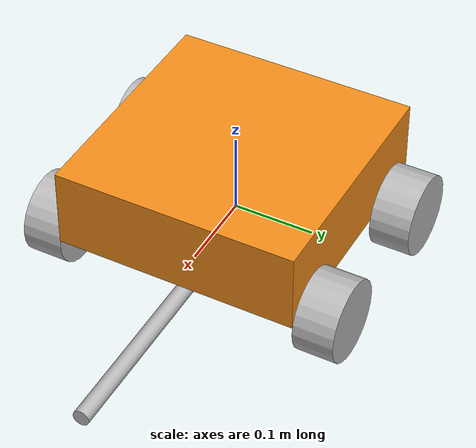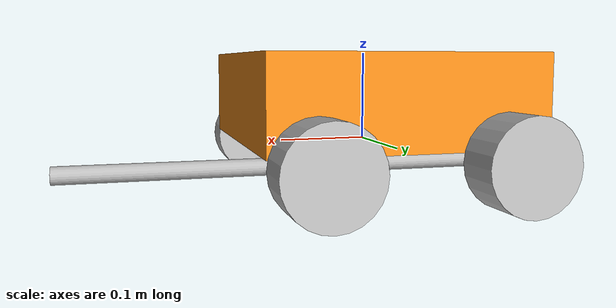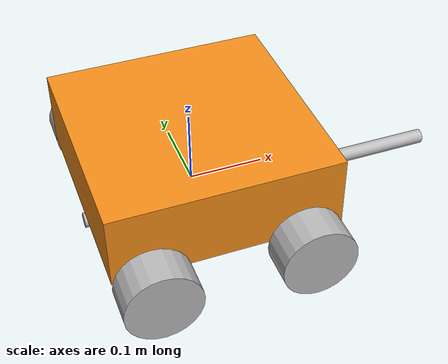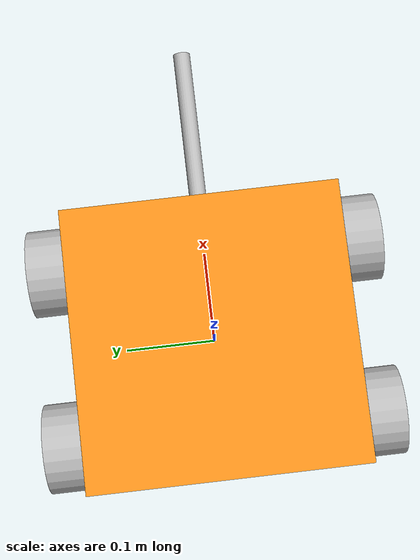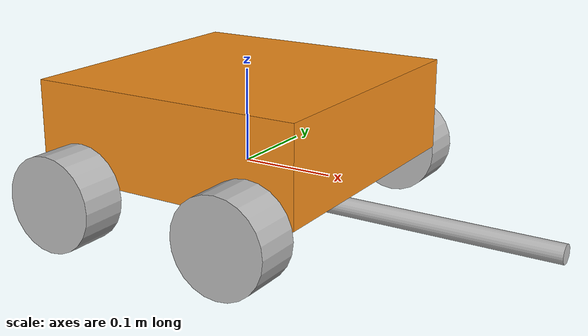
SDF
<?xml version='1.0'?>
<sdf version='1.6'>
  <model name='hitter_pole'>
    <link name='chassis'>
      <pose frame=''>0 0 0 0 -0 0</pose>
      <inertial>
        <pose frame=''>0 0 0.05 0 -0 0</pose>
        <mass>10</mass>
        <inertia>
          <ixx>0.5</ixx>
          <ixy>0</ixy>
          <ixz>0</ixz>
          <iyy>1</iyy>
          <iyz>0</iyz>
          <izz>0.1</izz>
        </inertia>
      </inertial>
      <self_collide>0</self_collide>
      <kinematic>0</kinematic>
      <velocity_decay/>
      <visual name='chassis_visual_visual'>
        <pose frame=''>0 0 0.05 0 -0 0</pose>
        <geometry>
          <box>
            <size>0.3 0.3 0.1</size>
          </box>
        </geometry>
        <material>
          <script>
            <name>Gazebo/Orange</name>
            <uri>file://media/materials/scripts/gazebo.material</uri>
          </script>
          <ambient>1 0.5088 0.0468 1</ambient>
          <diffuse>1 0.5088 0.0468 1</diffuse>
          <specular>0.5 0.5 0.5 1</specular>
          <emissive>0 0 0 1</emissive>
        </material>
        <cast_shadows>1</cast_shadows>
        <transparency>0</transparency>
      </visual>
      <collision name='chassis_fixed_joint_lump__collision_collision'>
        <laser_retro>0</laser_retro>
        <max_contacts>10</max_contacts>
        <pose frame=''>0 0 0.05 0 -0 0</pose>
        <geometry>
          <box>
            <size>0.3 0.3 0.1</size>
          </box>
        </geometry>
        <surface>
          <friction>
            <ode>
              <mu>1</mu>
              <mu2>1</mu2>
              <fdir1>0 0 0</fdir1>
              <slip1>0</slip1>
              <slip2>0</slip2>
            </ode>
            <torsional>
              <coefficient>1</coefficient>
              <patch_radius>0</patch_radius>
              <surface_radius>0</surface_radius>
              <use_patch_radius>1</use_patch_radius>
              <ode>
                <slip>0</slip>
              </ode>
            </torsional>
          </friction>
          <bounce>
            <restitution_coefficient>0</restitution_coefficient>
            <threshold>1e+06</threshold>
          </bounce>
          <contact>
            <collide_without_contact>0</collide_without_contact>
            <collide_without_contact_bitmask>1</collide_without_contact_bitmask>
            <collide_bitmask>1</collide_bitmask>
            <ode>
              <soft_cfm>0</soft_cfm>
              <soft_erp>0.2</soft_erp>
              <kp>1e+13</kp>
              <kd>1</kd>
              <max_vel>0.01</max_vel>
              <min_depth>0</min_depth>
            </ode>
            <bullet>
              <split_impulse>1</split_impulse>
              <split_impulse_penetration_threshold>-0.01</split_impulse_penetration_threshold>
              <soft_cfm>0</soft_cfm>
              <soft_erp>0.2</soft_erp>
              <kp>1e+13</kp>
              <kd>1</kd>
            </bullet>
          </contact>
        </surface>
      </collision>
    </link>
    <link name='gripper_pole'>
      <pose frame=''>-0 0 -0.03 0 -0 0</pose>
      <inertial>
        <pose frame=''>0 0 0.1 0 -0 0</pose>
        <mass>10</mass>
        <inertia>
          <ixx>0.5</ixx>
          <ixy>0</ixy>
          <ixz>0</ixz>
          <iyy>1</iyy>
          <iyz>0</iyz>
          <izz>0.1</izz>
        </inertia>
      </inertial>
      <self_collide>0</self_collide>
      <kinematic>0</kinematic>
      <gravity>1</gravity>
      <visual name='gripper_pole_visual'>
        <pose frame=''>0.1 0 0 1.57075 0 1.57075</pose>
        <geometry>
          <cylinder>
            <length>0.5</length>
            <radius>0.01</radius>
          </cylinder>
        </geometry>
        <cast_shadows>1</cast_shadows>
        <transparency>0</transparency>
        <material>
          <shader type='vertex'>
            <normal_map>__default__</normal_map>
          </shader>
        </material>
      </visual>
      <collision name='gripper_pole_fixed_joint_lump__collision_collision'>
        <laser_retro>0</laser_retro>
        <max_contacts>10</max_contacts>
        <pose frame=''>0.1 0 0 3.14159 1.57079 3.14159</pose>
        <geometry>
          <cylinder>
            <radius>0.01</radius>
            <length>0.5</length>
          </cylinder>
        </geometry>
        <surface>
          <friction>
            <ode>
              <mu>1</mu>
              <mu2>1</mu2>
              <fdir1>0 0 0</fdir1>
              <slip1>0</slip1>
              <slip2>0</slip2>
            </ode>
            <torsional>
              <coefficient>1</coefficient>
              <patch_radius>0</patch_radius>
              <surface_radius>0</surface_radius>
              <use_patch_radius>1</use_patch_radius>
              <ode>
                <slip>0</slip>
              </ode>
            </torsional>
          </friction>
          <bounce>
            <restitution_coefficient>1</restitution_coefficient>
            <threshold>0</threshold>
          </bounce>
          <contact>
            <collide_without_contact>0</collide_without_contact>
            <collide_without_contact_bitmask>1</collide_without_contact_bitmask>
            <collide_bitmask>1</collide_bitmask>
            <ode>
              <soft_cfm>0</soft_cfm>
              <soft_erp>0.2</soft_erp>
              <kp>1e+13</kp>
              <kd>1</kd>
              <max_vel>100</max_vel>
              <min_depth>0</min_depth>
            </ode>
            <bullet>
              <split_impulse>1</split_impulse>
              <split_impulse_penetration_threshold>-0.01</split_impulse_penetration_threshold>
              <soft_cfm>0</soft_cfm>
              <soft_erp>0.2</soft_erp>
              <kp>1e+13</kp>
              <kd>1</kd>
            </bullet>
          </contact>
        </surface>
      </collision>
    </link>
    <link name='left_back_wheel'>
      <pose frame=''>-0.1 0.175 -0.01 0 -0 0</pose>
      <inertial>
        <pose frame=''>0 0 0 -0 1.5707 1.5707</pose>
        <mass>5</mass>
        <inertia>
          <ixx>1</ixx>
          <ixy>0</ixy>
          <ixz>0</ixz>
          <iyy>1</iyy>
          <iyz>0</iyz>
          <izz>1</izz>
        </inertia>
      </inertial>
      <self_collide>0</self_collide>
      <kinematic>0</kinematic>
      <visual name='left_back_wheel_fixed_joint_lump__left_wheel_visual_visual'>
        <pose frame=''>0 0 0 -3.13685 1.57079 -1.56615</pose>
        <geometry>
          <cylinder>
            <length>0.05</length>
            <radius>0.05</radius>
          </cylinder>
        </geometry>
        <cast_shadows>1</cast_shadows>
        <transparency>0</transparency>
      </visual>
      <collision name='left_back_wheel_fixed_joint_lump__collision_collision'>
        <laser_retro>0</laser_retro>
        <max_contacts>10</max_contacts>
        <pose frame=''>0 0 0 3.14159 1.57079 -1.57089</pose>
        <geometry>
          <cylinder>
            <radius>0.05</radius>
            <length>0.05</length>
          </cylinder>
        </geometry>
        <surface>
          <friction>
            <ode>
              <mu>1</mu>
              <mu2>1</mu2>
              <fdir1>0 0 0</fdir1>
              <slip1>0</slip1>
              <slip2>0</slip2>
            </ode>
            <torsional>
              <coefficient>1</coefficient>
              <patch_radius>0</patch_radius>
              <surface_radius>0</surface_radius>
              <use_patch_radius>1</use_patch_radius>
              <ode>
                <slip>0</slip>
              </ode>
            </torsional>
          </friction>
          <bounce>
            <restitution_coefficient>0</restitution_coefficient>
            <threshold>1e+06</threshold>
          </bounce>
          <contact>
            <collide_without_contact>0</collide_without_contact>
            <collide_without_contact_bitmask>1</collide_without_contact_bitmask>
            <collide_bitmask>1</collide_bitmask>
            <ode>
              <soft_cfm>0</soft_cfm>
              <soft_erp>0.2</soft_erp>
              <kp>1e+13</kp>
              <kd>1</kd>
              <max_vel>0.01</max_vel>
              <min_depth>0</min_depth>
            </ode>
            <bullet>
              <split_impulse>1</split_impulse>
              <split_impulse_penetration_threshold>-0.01</split_impulse_penetration_threshold>
              <soft_cfm>0</soft_cfm>
              <soft_erp>0.2</soft_erp>
              <kp>1e+13</kp>
              <kd>1</kd>
            </bullet>
          </contact>
        </surface>
      </collision>
    </link>
    <link name='left_wheel'>
      <pose frame=''>0.1 0.175 -0.01 0 -0 0</pose>
      <inertial>
        <pose frame=''>0 0 0 -0 1.5707 1.5707</pose>
        <mass>5</mass>
        <inertia>
          <ixx>1</ixx>
          <ixy>0</ixy>
          <ixz>0</ixz>
          <iyy>1</iyy>
          <iyz>0</iyz>
          <izz>1</izz>
        </inertia>
      </inertial>
      <self_collide>0</self_collide>
      <kinematic>0</kinematic>
      <visual name='left_wheel_visual_visual'>
        <pose frame=''>0 0 0 -3.13685 1.57079 -1.56615</pose>
        <geometry>
          <cylinder>
            <length>0.05</length>
            <radius>0.05</radius>
          </cylinder>
        </geometry>
        <cast_shadows>1</cast_shadows>
        <transparency>0</transparency>
      </visual>
      <collision name='left_wheel_fixed_joint_lump__collision_collision'>
        <laser_retro>0</laser_retro>
        <max_contacts>10</max_contacts>
        <pose frame=''>0 0 0 3.14159 1.57079 -1.57089</pose>
        <geometry>
          <cylinder>
            <radius>0.05</radius>
            <length>0.05</length>
          </cylinder>
        </geometry>
        <surface>
          <friction>
            <ode>
              <mu>1</mu>
              <mu2>1</mu2>
              <fdir1>0 0 0</fdir1>
              <slip1>0</slip1>
              <slip2>0</slip2>
            </ode>
            <torsional>
              <coefficient>1</coefficient>
              <patch_radius>0</patch_radius>
              <surface_radius>0</surface_radius>
              <use_patch_radius>1</use_patch_radius>
              <ode>
                <slip>0</slip>
              </ode>
            </torsional>
          </friction>
          <bounce>
            <restitution_coefficient>0</restitution_coefficient>
            <threshold>1e+06</threshold>
          </bounce>
          <contact>
            <collide_without_contact>0</collide_without_contact>
            <collide_without_contact_bitmask>1</collide_without_contact_bitmask>
            <collide_bitmask>1</collide_bitmask>
            <ode>
              <soft_cfm>0</soft_cfm>
              <soft_erp>0.2</soft_erp>
              <kp>1e+13</kp>
              <kd>1</kd>
              <max_vel>0.01</max_vel>
              <min_depth>0</min_depth>
            </ode>
            <bullet>
              <split_impulse>1</split_impulse>
              <split_impulse_penetration_threshold>-0.01</split_impulse_penetration_threshold>
              <soft_cfm>0</soft_cfm>
              <soft_erp>0.2</soft_erp>
              <kp>1e+13</kp>
              <kd>1</kd>
            </bullet>
          </contact>
        </surface>
      </collision>
    </link>
    <link name='right_back_wheel'>
      <pose frame=''>-0.1 -0.175 -0.01 0 -0 0</pose>
      <inertial>
        <pose frame=''>0 0 0 -0 1.5707 1.5707</pose>
        <mass>5</mass>
        <inertia>
          <ixx>1</ixx>
          <ixy>0</ixy>
          <ixz>0</ixz>
          <iyy>1</iyy>
          <iyz>0</iyz>
          <izz>1</izz>
        </inertia>
      </inertial>
      <self_collide>0</self_collide>
      <kinematic>0</kinematic>
      <visual name='right_back_wheel_fixed_joint_lump__right_wheel_visual_visual'>
        <pose frame=''>0 0 0 -3.13685 1.57079 -1.56615</pose>
        <geometry>
          <cylinder>
            <length>0.05</length>
            <radius>0.05</radius>
          </cylinder>
        </geometry>
        <cast_shadows>1</cast_shadows>
        <transparency>0</transparency>
      </visual>
      <collision name='right_back_wheel_fixed_joint_lump__collision_collision'>
        <laser_retro>0</laser_retro>
        <max_contacts>10</max_contacts>
        <pose frame=''>0 0 0 3.14159 1.57079 -1.57089</pose>
        <geometry>
          <cylinder>
            <radius>0.05</radius>
            <length>0.05</length>
          </cylinder>
        </geometry>
        <surface>
          <friction>
            <ode>
              <mu>1</mu>
              <mu2>1</mu2>
              <fdir1>0 0 0</fdir1>
              <slip1>0</slip1>
              <slip2>0</slip2>
            </ode>
            <torsional>
              <coefficient>1</coefficient>
              <patch_radius>0</patch_radius>
              <surface_radius>0</surface_radius>
              <use_patch_radius>1</use_patch_radius>
              <ode>
                <slip>0</slip>
              </ode>
            </torsional>
          </friction>
          <bounce>
            <restitution_coefficient>0</restitution_coefficient>
            <threshold>1e+06</threshold>
          </bounce>
          <contact>
            <collide_without_contact>0</collide_without_contact>
            <collide_without_contact_bitmask>1</collide_without_contact_bitmask>
            <collide_bitmask>1</collide_bitmask>
            <ode>
              <soft_cfm>0</soft_cfm>
              <soft_erp>0.2</soft_erp>
              <kp>1e+13</kp>
              <kd>1</kd>
              <max_vel>0.01</max_vel>
              <min_depth>0</min_depth>
            </ode>
            <bullet>
              <split_impulse>1</split_impulse>
              <split_impulse_penetration_threshold>-0.01</split_impulse_penetration_threshold>
              <soft_cfm>0</soft_cfm>
              <soft_erp>0.2</soft_erp>
              <kp>1e+13</kp>
              <kd>1</kd>
            </bullet>
          </contact>
        </surface>
      </collision>
    </link>
    <link name='right_wheel'>
      <pose frame=''>0.1 -0.175 -0.01 0 -0 0</pose>
      <inertial>
        <pose frame=''>0 0 0 -0 1.5707 1.5707</pose>
        <mass>5</mass>
        <inertia>
          <ixx>1</ixx>
          <ixy>0</ixy>
          <ixz>0</ixz>
          <iyy>1</iyy>
          <iyz>0</iyz>
          <izz>1</izz>
        </inertia>
      </inertial>
      <self_collide>0</self_collide>
      <kinematic>0</kinematic>
      <visual name='right_wheel_visual_visual'>
        <pose frame=''>0 0 0 -3.13685 1.57079 -1.56615</pose>
        <geometry>
          <cylinder>
            <length>0.05</length>
            <radius>0.05</radius>
          </cylinder>
        </geometry>
        <cast_shadows>1</cast_shadows>
        <transparency>0</transparency>
      </visual>
      <collision name='right_wheel_fixed_joint_lump__collision_collision'>
        <laser_retro>0</laser_retro>
        <max_contacts>10</max_contacts>
        <pose frame=''>0 0 0 3.14159 1.57079 -1.57089</pose>
        <geometry>
          <cylinder>
            <radius>0.05</radius>
            <length>0.05</length>
          </cylinder>
        </geometry>
        <surface>
          <friction>
            <ode>
              <mu>1</mu>
              <mu2>1</mu2>
              <fdir1>0 0 0</fdir1>
              <slip1>0</slip1>
              <slip2>0</slip2>
            </ode>
            <torsional>
              <coefficient>1</coefficient>
              <patch_radius>0</patch_radius>
              <surface_radius>0</surface_radius>
              <use_patch_radius>1</use_patch_radius>
              <ode>
                <slip>0</slip>
              </ode>
            </torsional>
          </friction>
          <bounce>
            <restitution_coefficient>0</restitution_coefficient>
            <threshold>1e+06</threshold>
          </bounce>
          <contact>
            <collide_without_contact>0</collide_without_contact>
            <collide_without_contact_bitmask>1</collide_without_contact_bitmask>
            <collide_bitmask>1</collide_bitmask>
            <ode>
              <soft_cfm>0</soft_cfm>
              <soft_erp>0.2</soft_erp>
              <kp>1e+13</kp>
              <kd>1</kd>
              <max_vel>0.01</max_vel>
              <min_depth>0</min_depth>
            </ode>
            <bullet>
              <split_impulse>1</split_impulse>
              <split_impulse_penetration_threshold>-0.01</split_impulse_penetration_threshold>
              <soft_cfm>0</soft_cfm>
              <soft_erp>0.2</soft_erp>
              <kp>1e+13</kp>
              <kd>1</kd>
            </bullet>
          </contact>
        </surface>
      </collision>
    </link>
    <joint name='gripper_extension' type='prismatic'>
      <parent>chassis</parent>
      <child>gripper_pole</child>
      <pose frame=''>0 0 0 0 -0 0</pose>
      <axis>
        <xyz>1 0 0</xyz>
        <use_parent_model_frame>1</use_parent_model_frame>
        <limit>
          <lower>0</lower>
          <upper>0.3</upper>
          <effort>1000</effort>
          <velocity>8.5</velocity>
        </limit>
        <dynamics>
          <spring_reference>0</spring_reference>
          <spring_stiffness>0</spring_stiffness>
          <damping>0</damping>
          <friction>0</friction>
        </dynamics>
      </axis>
      <physics>
        <ode>
          <limit>
            <cfm>0</cfm>
            <erp>0.2</erp>
          </limit>
          <suspension>
            <cfm>0</cfm>
            <erp>0.2</erp>
          </suspension>
        </ode>
      </physics>
    </joint>
    <joint name='left_back_wheel_hinge' type='revolute'>
      <parent>chassis</parent>
      <child>left_back_wheel</child>
      <pose frame=''>0 0 0 0 -0 0</pose>
      <axis>
        <xyz>0 1 0</xyz>
        <use_parent_model_frame>1</use_parent_model_frame>
        <limit>
          <lower>-1e+16</lower>
          <upper>1e+16</upper>
          <effort>-1</effort>
          <velocity>-1</velocity>
        </limit>
        <dynamics>
          <spring_reference>0</spring_reference>
          <spring_stiffness>0</spring_stiffness>
          <damping>0</damping>
          <friction>0</friction>
        </dynamics>
      </axis>
      <physics>
        <ode>
          <limit>
            <cfm>0</cfm>
            <erp>0.2</erp>
          </limit>
          <suspension>
            <cfm>0</cfm>
            <erp>0.2</erp>
          </suspension>
        </ode>
      </physics>
    </joint>
    <joint name='left_wheel_hinge' type='revolute'>
      <parent>chassis</parent>
      <child>left_wheel</child>
      <pose frame=''>0 0 0 0 -0 0</pose>
      <axis>
        <xyz>0 1 0</xyz>
        <use_parent_model_frame>1</use_parent_model_frame>
        <limit>
          <lower>-1e+16</lower>
          <upper>1e+16</upper>
          <effort>-1</effort>
          <velocity>-1</velocity>
        </limit>
        <dynamics>
          <spring_reference>0</spring_reference>
          <spring_stiffness>0</spring_stiffness>
          <damping>0</damping>
          <friction>0</friction>
        </dynamics>
      </axis>
      <physics>
        <ode>
          <limit>
            <cfm>0</cfm>
            <erp>0.2</erp>
          </limit>
          <suspension>
            <cfm>0</cfm>
            <erp>0.2</erp>
          </suspension>
        </ode>
      </physics>
    </joint>
    <joint name='right_back_wheel_hinge' type='revolute'>
      <parent>chassis</parent>
      <child>right_back_wheel</child>
      <pose frame=''>0 0 0 0 -0 0</pose>
      <axis>
        <xyz>0 1 0</xyz>
        <use_parent_model_frame>1</use_parent_model_frame>
        <limit>
          <lower>-1e+16</lower>
          <upper>1e+16</upper>
          <effort>-1</effort>
          <velocity>-1</velocity>
        </limit>
        <dynamics>
          <spring_reference>0</spring_reference>
          <spring_stiffness>0</spring_stiffness>
          <damping>0</damping>
          <friction>0</friction>
        </dynamics>
      </axis>
      <physics>
        <ode>
          <limit>
            <cfm>0</cfm>
            <erp>0.2</erp>
          </limit>
          <suspension>
            <cfm>0</cfm>
            <erp>0.2</erp>
          </suspension>
        </ode>
      </physics>
    </joint>
    <joint name='right_wheel_hinge' type='revolute'>
      <parent>chassis</parent>
      <child>right_wheel</child>
      <pose frame=''>0 0 0 0 -0 0</pose>
      <axis>
        <xyz>0 1 0</xyz>
        <use_parent_model_frame>1</use_parent_model_frame>
        <limit>
          <lower>-1e+16</lower>
          <upper>1e+16</upper>
          <effort>-1</effort>
          <velocity>-1</velocity>
        </limit>
        <dynamics>
          <spring_reference>0</spring_reference>
          <spring_stiffness>0</spring_stiffness>
          <damping>0</damping>
          <friction>0</friction>
        </dynamics>
      </axis>
      <physics>
        <ode>
          <limit>
            <cfm>0</cfm>
            <erp>0.2</erp>
          </limit>
          <suspension>
            <cfm>0</cfm>
            <erp>0.2</erp>
          </suspension>
        </ode>
      </physics>
    </joint>
    <static>0</static>
    <allow_auto_disable>1</allow_auto_disable>
    <plugin name='differential_drive_controller' filename='libgazebo_ros_diff_drive.so'>
      <legacyMode>false</legacyMode>
      <alwaysOn>true</alwaysOn>
      <updateRate>20</updateRate>
      <leftJoint>left_wheel_hinge</leftJoint>
      <rightJoint>right_wheel_hinge</rightJoint>
      <wheelSeparation>0.035</wheelSeparation>
      <wheelDiameter>0.01</wheelDiameter>
      <torque>20</torque>
      <commandTopic>cmd_vel</commandTopic>
      <odometryTopic>odom</odometryTopic>
      <odometryFrame>odom</odometryFrame>
      <robotBaseFrame>chassis</robotBaseFrame>
      <robotNamespace>/mybot/</robotNamespace>
    </plugin>
    <plugin name='gazebo_ros_control' filename='libgazebo_ros_control.so'>
      <robotNamespace>/mybot</robotNamespace>
      <robotSimType>gazebo_ros_control/DefaultRobotHWSim</robotSimType>
      <legacyModeNS>true</legacyModeNS>
    </plugin>
  </model>
</sdf>
